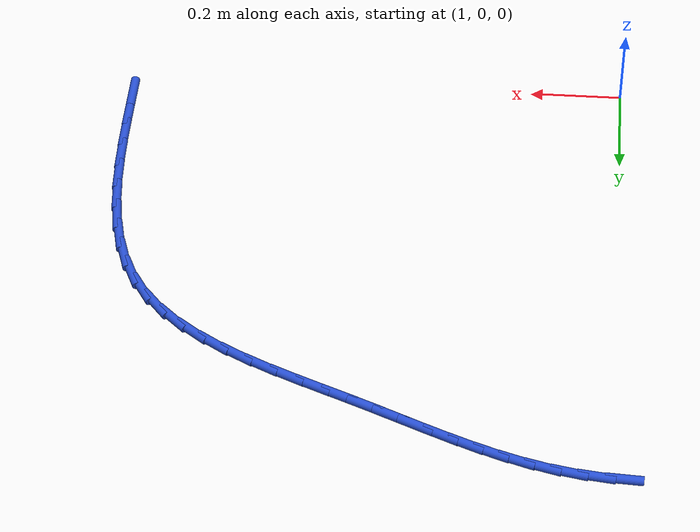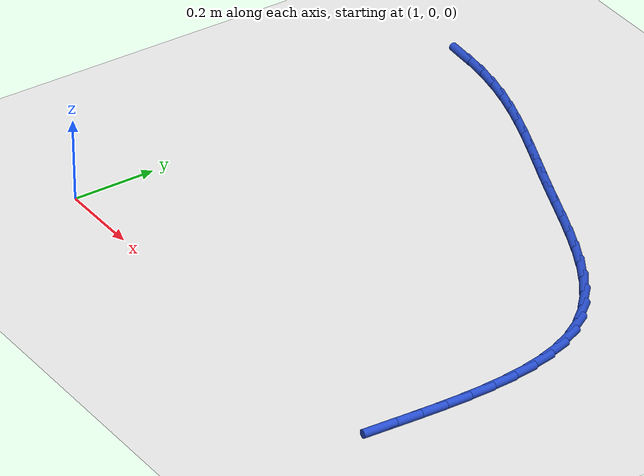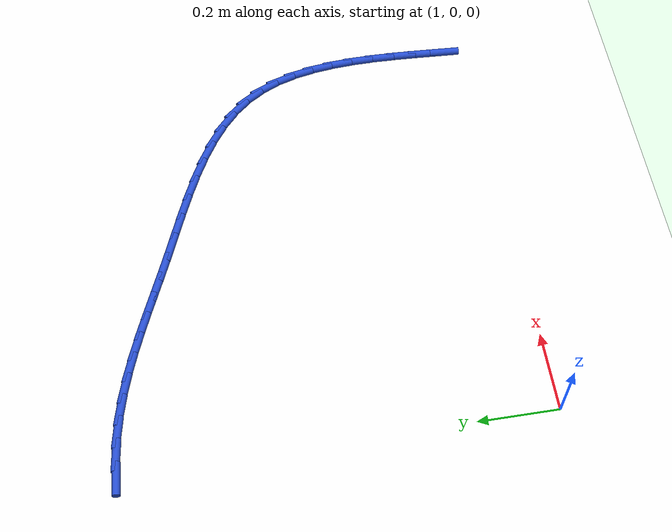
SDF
<sdf version="1.6">
 <world name="default">
  <model name="ground_plane">
   <static>1</static>
   <link name="link">
    <collision name="collision">
     <geometry><plane><normal>0 0 1</normal><size>100 100</size></plane></geometry>
     <surface><friction><ode><mu>100</mu><mu2>50</mu2></ode></friction></surface>
    </collision>
    <visual name="visual">
     <cast_shadows>0</cast_shadows>
     <geometry><plane><normal>0 0 1</normal><size>100 100</size></plane></geometry>
     <material>
      <script><uri>file://media/materials/scripts/gazebo.material</uri><name>Gazebo/WhiteGlow</name></script>
     </material>
    </visual>
   </link>
  </model>
  <model name="line">
   <link name="link_28">
    <pose>0.9896197238128589 1.036560563945688 0.01 0 1.57 -0.06335095944775404</pose>
    <collision name="collision">
     <geometry><cylinder><radius>0.01</radius><length>0.08</length></cylinder></geometry>
    </collision>
    <visual name="visual">
     <material>
      <script><name>Gazebo/Blue</name><uri>file://media/materials/scripts/gazebo.material</uri></script>
     </material>
     <geometry><cylinder><radius>0.01</radius><length>0.08</length></cylinder></geometry>
    </visual>
   </link>
   <link name="link_29">
    <pose>1.0460075228041155 1.0329835562434222 0.01 0 1.57 -0.1268726735697694</pose>
    <collision name="collision">
     <geometry><cylinder><radius>0.01</radius><length>0.08</length></cylinder></geometry>
    </collision>
    <visual name="visual">
     <material>
      <script><name>Gazebo/Blue</name><uri>file://media/materials/scripts/gazebo.material</uri></script>
     </material>
     <geometry><cylinder><radius>0.01</radius><length>0.08</length></cylinder></geometry>
    </visual>
   </link>
   <link name="link_30">
    <pose>1.1014679343148364 1.0259091466035877 0.01 0 1.57 -0.19163393964215028</pose>
    <collision name="collision">
     <geometry><cylinder><radius>0.01</radius><length>0.08</length></cylinder></geometry>
    </collision>
    <visual name="visual">
     <material>
      <script><name>Gazebo/Blue</name><uri>file://media/materials/scripts/gazebo.material</uri></script>
     </material>
     <geometry><cylinder><radius>0.01</radius><length>0.08</length></cylinder></geometry>
    </visual>
   </link>
   <link name="link_31">
    <pose>1.1557208311762055 1.0153832846151685 0.01 0 1.57 -0.2508044474164007</pose>
    <collision name="collision">
     <geometry><cylinder><radius>0.01</radius><length>0.08</length></cylinder></geometry>
    </collision>
    <visual name="visual">
     <material>
      <script><name>Gazebo/Blue</name><uri>file://media/materials/scripts/gazebo.material</uri></script>
     </material>
     <geometry><cylinder><radius>0.01</radius><length>0.08</length></cylinder></geometry>
    </visual>
   </link>
   <link name="link_32">
    <pose>1.2089185230315167 1.001754089455325 0.01 0 1.57 -0.30046512542872494</pose>
    <collision name="collision">
     <geometry><cylinder><radius>0.01</radius><length>0.08</length></cylinder></geometry>
    </collision>
    <visual name="visual">
     <material>
      <script><name>Gazebo/Blue</name><uri>file://media/materials/scripts/gazebo.material</uri></script>
     </material>
     <geometry><cylinder><radius>0.01</radius><length>0.08</length></cylinder></geometry>
    </visual>
   </link>
   <link name="link_33">
    <pose>1.2613928524084628 0.9854951307166879 0.01 0 1.57 -0.33984520914096034</pose>
    <collision name="collision">
     <geometry><cylinder><radius>0.01</radius><length>0.08</length></cylinder></geometry>
    </collision>
    <visual name="visual">
     <material>
      <script><name>Gazebo/Blue</name><uri>file://media/materials/scripts/gazebo.material</uri></script>
     </material>
     <geometry><cylinder><radius>0.01</radius><length>0.08</length></cylinder></geometry>
    </visual>
   </link>
   <link name="link_34">
    <pose>1.3134762439319723 0.9670803847382081 0.01 0 1.57 -0.3686295986598869</pose>
    <collision name="collision">
     <geometry><cylinder><radius>0.01</radius><length>0.08</length></cylinder></geometry>
    </collision>
    <visual name="visual">
     <material>
      <script><name>Gazebo/Blue</name><uri>file://media/materials/scripts/gazebo.material</uri></script>
     </material>
     <geometry><cylinder><radius>0.01</radius><length>0.08</length></cylinder></geometry>
    </visual>
   </link>
   <link name="link_35">
    <pose>1.3655011222269733 0.9469838278588347 0.01 0 1.57 -0.3868343444053025</pose>
    <collision name="collision">
     <geometry><cylinder><radius>0.01</radius><length>0.08</length></cylinder></geometry>
    </collision>
    <visual name="visual">
     <material>
      <script><name>Gazebo/Blue</name><uri>file://media/materials/scripts/gazebo.material</uri></script>
     </material>
     <geometry><cylinder><radius>0.01</radius><length>0.08</length></cylinder></geometry>
    </visual>
   </link>
   <link name="link_36">
    <pose>1.417799911918393 0.9256794364175184 0.01 0 1.57 -0.3947016863122176</pose>
    <collision name="collision">
     <geometry><cylinder><radius>0.01</radius><length>0.08</length></cylinder></geometry>
    </collision>
    <visual name="visual">
     <material>
      <script><name>Gazebo/Blue</name><uri>file://media/materials/scripts/gazebo.material</uri></script>
     </material>
     <geometry><cylinder><radius>0.01</radius><length>0.08</length></cylinder></geometry>
    </visual>
   </link>
   <link name="link_37">
    <pose>1.4707050376311608 0.9036411867532088 0.01 0 1.57 -0.3926239956681509</pose>
    <collision name="collision">
     <geometry><cylinder><radius>0.01</radius><length>0.08</length></cylinder></geometry>
    </collision>
    <visual name="visual">
     <material>
      <script><name>Gazebo/Blue</name><uri>file://media/materials/scripts/gazebo.material</uri></script>
     </material>
     <geometry><cylinder><radius>0.01</radius><length>0.08</length></cylinder></geometry>
    </visual>
   </link>
   <link name="link_38">
    <pose>1.524548923990204 0.881343055204856 0.01 0 1.57 -0.3821027185056281</pose>
    <collision name="collision">
     <geometry><cylinder><radius>0.01</radius><length>0.08</length></cylinder></geometry>
    </collision>
    <visual name="visual">
     <material>
      <script><name>Gazebo/Blue</name><uri>file://media/materials/scripts/gazebo.material</uri></script>
     </material>
     <geometry><cylinder><radius>0.01</radius><length>0.08</length></cylinder></geometry>
    </visual>
   </link>
   <link name="link_39">
    <pose>1.5796124050484892 0.8592156334130711 0.01 0 1.57 -0.37590245834165986</pose>
    <collision name="collision">
     <geometry><cylinder><radius>0.01</radius><length>0.08</length></cylinder></geometry>
    </collision>
    <visual name="visual">
     <material>
      <script><name>Gazebo/Blue</name><uri>file://media/materials/scripts/gazebo.material</uri></script>
     </material>
     <geometry><cylinder><radius>0.01</radius><length>0.08</length></cylinder></geometry>
    </visual>
   </link>
   <link name="link_40">
    <pose>1.6355305500188524 0.8371464619972826 0.01 0 1.57 -0.38213358793220237</pose>
    <collision name="collision">
     <geometry><cylinder><radius>0.01</radius><length>0.08</length></cylinder></geometry>
    </collision>
    <visual name="visual">
     <material>
      <script><name>Gazebo/Blue</name><uri>file://media/materials/scripts/gazebo.material</uri></script>
     </material>
     <geometry><cylinder><radius>0.01</radius><length>0.08</length></cylinder></geometry>
    </visual>
   </link>
   <link name="link_41">
    <pose>1.691498856126394 0.8146534268636411 0.01 0 1.57 -0.40100729343793157</pose>
    <collision name="collision">
     <geometry><cylinder><radius>0.01</radius><length>0.08</length></cylinder></geometry>
    </collision>
    <visual name="visual">
     <material>
      <script><name>Gazebo/Blue</name><uri>file://media/materials/scripts/gazebo.material</uri></script>
     </material>
     <geometry><cylinder><radius>0.01</radius><length>0.08</length></cylinder></geometry>
    </visual>
   </link>
   <link name="link_42">
    <pose>1.7467043907286761 0.7912473248854337 0.01 0 1.57 -0.43327044652731567</pose>
    <collision name="collision">
     <geometry><cylinder><radius>0.01</radius><length>0.08</length></cylinder></geometry>
    </collision>
    <visual name="visual">
     <material>
      <script><name>Gazebo/Blue</name><uri>file://media/materials/scripts/gazebo.material</uri></script>
     </material>
     <geometry><cylinder><radius>0.01</radius><length>0.08</length></cylinder></geometry>
    </visual>
   </link>
   <link name="link_43">
    <pose>1.8003342211832638 0.7664389529359472 0.01 0 1.57 -0.48035498081845523</pose>
    <collision name="collision">
     <geometry><cylinder><radius>0.01</radius><length>0.08</length></cylinder></geometry>
    </collision>
    <visual name="visual">
     <material>
      <script><name>Gazebo/Blue</name><uri>file://media/materials/scripts/gazebo.material</uri></script>
     </material>
     <geometry><cylinder><radius>0.01</radius><length>0.08</length></cylinder></geometry>
    </visual>
   </link>
   <link name="link_44">
    <pose>1.8515754148477197 0.7397391078884692 0.01 0 1.57 -0.5443399996694572</pose>
    <collision name="collision">
     <geometry><cylinder><radius>0.01</radius><length>0.08</length></cylinder></geometry>
    </collision>
    <visual name="visual">
     <material>
      <script><name>Gazebo/Blue</name><uri>file://media/materials/scripts/gazebo.material</uri></script>
     </material>
     <geometry><cylinder><radius>0.01</radius><length>0.08</length></cylinder></geometry>
    </visual>
   </link>
   <link name="link_45">
    <pose>1.8996150390796076 0.7106585866162859 0.01 0 1.57 -0.6277872436011154</pose>
    <collision name="collision">
     <geometry><cylinder><radius>0.01</radius><length>0.08</length></cylinder></geometry>
    </collision>
    <visual name="visual">
     <material>
      <script><name>Gazebo/Blue</name><uri>file://media/materials/scripts/gazebo.material</uri></script>
     </material>
     <geometry><cylinder><radius>0.01</radius><length>0.08</length></cylinder></geometry>
    </visual>
   </link>
   <link name="link_46">
    <pose>1.943640161236492 0.6787081859926853 0.01 0 1.57 -0.7332598197943035</pose>
    <collision name="collision">
     <geometry><cylinder><radius>0.01</radius><length>0.08</length></cylinder></geometry>
    </collision>
    <visual name="visual">
     <material>
      <script><name>Gazebo/Blue</name><uri>file://media/materials/scripts/gazebo.material</uri></script>
     </material>
     <geometry><cylinder><radius>0.01</radius><length>0.08</length></cylinder></geometry>
    </visual>
   </link>
   <link name="link_47">
    <pose>1.9828378486759357 0.6433987028909536 0.01 0 1.57 -0.8622654839330721</pose>
    <collision name="collision">
     <geometry><cylinder><radius>0.01</radius><length>0.08</length></cylinder></geometry>
    </collision>
    <visual name="visual">
     <material>
      <script><name>Gazebo/Blue</name><uri>file://media/materials/scripts/gazebo.material</uri></script>
     </material>
     <geometry><cylinder><radius>0.01</radius><length>0.08</length></cylinder></geometry>
    </visual>
   </link>
   <link name="link_48">
    <pose>2.0163951687555017 0.6042409341843782 0.01 0 1.57 -1.0117713205665635</pose>
    <collision name="collision">
     <geometry><cylinder><radius>0.01</radius><length>0.08</length></cylinder></geometry>
    </collision>
    <visual name="visual">
     <material>
      <script><name>Gazebo/Blue</name><uri>file://media/materials/scripts/gazebo.material</uri></script>
     </material>
     <geometry><cylinder><radius>0.01</radius><length>0.08</length></cylinder></geometry>
    </visual>
   </link>
   <link name="link_49">
    <pose>2.0435733434733545 0.5607970140288363 0.01 0 1.57 -1.1561376548827347</pose>
    <collision name="collision">
     <geometry><cylinder><radius>0.01</radius><length>0.08</length></cylinder></geometry>
    </collision>
    <visual name="visual">
     <material>
      <script><name>Gazebo/Blue</name><uri>file://media/materials/scripts/gazebo.material</uri></script>
     </material>
     <geometry><cylinder><radius>0.01</radius><length>0.08</length></cylinder></geometry>
    </visual>
   </link>
   <link name="link_50">
    <pose>2.0645091494494414 0.5132352233388918 0.01 0 1.57 -1.2781406942182254</pose>
    <collision name="collision">
     <geometry><cylinder><radius>0.01</radius><length>0.08</length></cylinder></geometry>
    </collision>
    <visual name="visual">
     <material>
      <script><name>Gazebo/Blue</name><uri>file://media/materials/scripts/gazebo.material</uri></script>
     </material>
     <geometry><cylinder><radius>0.01</radius><length>0.08</length></cylinder></geometry>
    </visual>
   </link>
   <link name="link_51">
    <pose>2.079910717720293 0.4621193918835834 0.01 0 1.57 -1.377573366621133</pose>
    <collision name="collision">
     <geometry><cylinder><radius>0.01</radius><length>0.08</length></cylinder></geometry>
    </collision>
    <visual name="visual">
     <material>
      <script><name>Gazebo/Blue</name><uri>file://media/materials/scripts/gazebo.material</uri></script>
     </material>
     <geometry><cylinder><radius>0.01</radius><length>0.08</length></cylinder></geometry>
    </visual>
   </link>
   <link name="link_52">
    <pose>2.0904959973268666 0.408020146439708 0.01 0 1.57 -1.4565078956046706</pose>
    <collision name="collision">
     <geometry><cylinder><radius>0.01</radius><length>0.08</length></cylinder></geometry>
    </collision>
    <visual name="visual">
     <material>
      <script><name>Gazebo/Blue</name><uri>file://media/materials/scripts/gazebo.material</uri></script>
     </material>
     <geometry><cylinder><radius>0.01</radius><length>0.08</length></cylinder></geometry>
    </visual>
   </link>
   <link name="link_53">
    <pose>2.0969829373101168 0.3515081137840633 0.01 0 1.57 -1.5176104376865076</pose>
    <collision name="collision">
     <geometry><cylinder><radius>0.01</radius><length>0.08</length></cylinder></geometry>
    </collision>
    <visual name="visual">
     <material>
      <script><name>Gazebo/Blue</name><uri>file://media/materials/scripts/gazebo.material</uri></script>
     </material>
     <geometry><cylinder><radius>0.01</radius><length>0.08</length></cylinder></geometry>
    </visual>
   </link>
   <link name="link_54">
    <pose>2.1000894867109983 0.29315392069344615 0.01 0 1.57 -1.563348205464836</pose>
    <collision name="collision">
     <geometry><cylinder><radius>0.01</radius><length>0.08</length></cylinder></geometry>
    </collision>
    <visual name="visual">
     <material>
      <script><name>Gazebo/Blue</name><uri>file://media/materials/scripts/gazebo.material</uri></script>
     </material>
     <geometry><cylinder><radius>0.01</radius><length>0.08</length></cylinder></geometry>
    </visual>
   </link>
   <link name="link_55">
    <pose>2.100533594570469 0.23352819394465443 0.01 0 1.57 1.5459304375106695</pose>
    <collision name="collision">
     <geometry><cylinder><radius>0.01</radius><length>0.08</length></cylinder></geometry>
    </collision>
    <visual name="visual">
     <material>
      <script><name>Gazebo/Blue</name><uri>file://media/materials/scripts/gazebo.material</uri></script>
     </material>
     <geometry><cylinder><radius>0.01</radius><length>0.08</length></cylinder></geometry>
    </visual>
   </link>
   <link name="link_56">
    <pose>2.099033209929482 0.17320156031448478 0.01 0 1.57 1.5257215638900774</pose>
    <collision name="collision">
     <geometry><cylinder><radius>0.01</radius><length>0.08</length></cylinder></geometry>
    </collision>
    <visual name="visual">
     <material>
      <script><name>Gazebo/Blue</name><uri>file://media/materials/scripts/gazebo.material</uri></script>
     </material>
     <geometry><cylinder><radius>0.01</radius><length>0.08</length></cylinder></geometry>
    </visual>
   </link>
   <link name="link_57">
    <pose>2.0963062818289955 0.1127446465797354 0.01 0 1.57 1.5169379736531114</pose>
    <collision name="collision">
     <geometry><cylinder><radius>0.01</radius><length>0.08</length></cylinder></geometry>
    </collision>
    <visual name="visual">
     <material>
      <script><name>Gazebo/Blue</name><uri>file://media/materials/scripts/gazebo.material</uri></script>
     </material>
     <geometry><cylinder><radius>0.01</radius><length>0.08</length></cylinder></geometry>
    </visual>
   </link>
   <link name="link_58">
    <pose>2.0930707593099624 0.05272807951720268 0.01 0 1.57 1.5169354016203664</pose>
    <collision name="collision">
     <geometry><cylinder><radius>0.01</radius><length>0.08</length></cylinder></geometry>
    </collision>
    <visual name="visual">
     <material>
      <script><name>Gazebo/Blue</name><uri>file://media/materials/scripts/gazebo.material</uri></script>
     </material>
     <geometry><cylinder><radius>0.01</radius><length>0.08</length></cylinder></geometry>
    </visual>
   </link>
  </model>
 </world>
</sdf>
